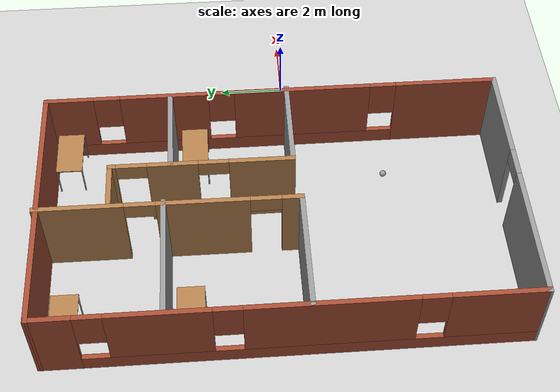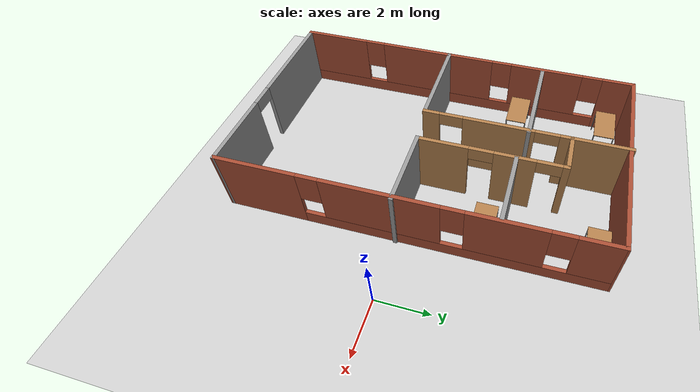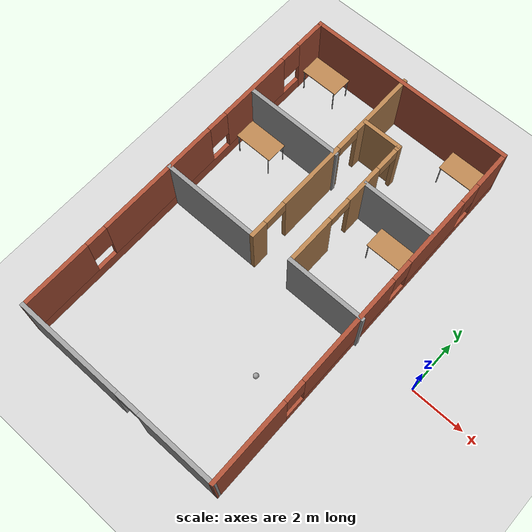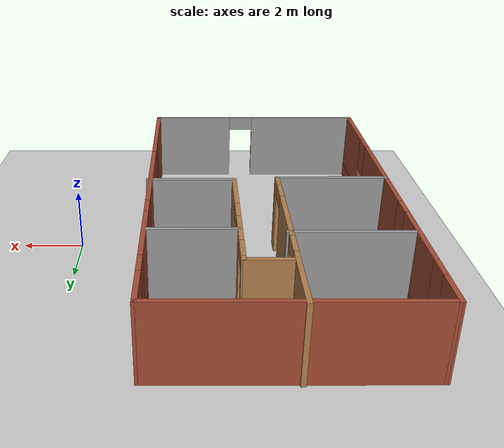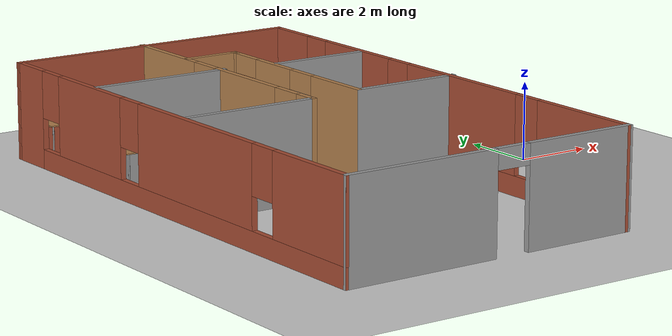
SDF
<sdf version="1.6">
 <world name="default">
  <plugin name="welcome" filename="libwelcome.so"/>
  <light name="sun" type="directional">
   <pose>0 0 10 0 -0 0</pose>
   <diffuse>0.8 0.8 0.8 1</diffuse>
   <specular>0.2 0.2 0.2 1</specular>
   <attenuation>
    <range>1000</range>
    <constant>0.9</constant>
    <linear>0.01</linear>
    <quadratic>0.001</quadratic>
   </attenuation>
   <direction>-0.5 0.1 -0.9</direction>
   <spot><inner_angle>0</inner_angle><outer_angle>0</outer_angle><falloff>0</falloff></spot>
  </light>
  <model name="ground_plane">
   <static>1</static>
   <link name="link">
    <collision name="collision">
     <geometry><plane><normal>0 0 1</normal><size>100 100</size></plane></geometry>
     <surface>
      <contact><collide_bitmask>65535</collide_bitmask></contact>
      <friction><ode><mu>100</mu><mu2>50</mu2></ode></friction>
     </surface>
    </collision>
    <visual name="visual">
     <cast_shadows>0</cast_shadows>
     <geometry><plane><normal>0 0 1</normal><size>100 100</size></plane></geometry>
     <material>
      <script><uri>file://media/materials/scripts/gazebo.material</uri><name>Gazebo/Grey</name></script>
     </material>
    </visual>
   </link>
  </model>
  <gravity>0 0 -9.8</gravity>
  <magnetic_field>6e-06 2.3e-05 -4.2e-05</magnetic_field>
  <atmosphere type="adiabatic"/>
  <physics name="default_physics" default="0" type="ode">
   <max_step_size>0.001</max_step_size>
   <real_time_factor>1</real_time_factor>
   <real_time_update_rate>1000</real_time_update_rate>
  </physics>
  <scene><ambient>0.4 0.4 0.4 1</ambient><background>0.7 0.7 0.7 1</background><shadows>1</shadows></scene>
  <audio><device>default</device></audio>
  <spherical_coordinates>
   <surface_model>EARTH_WGS84</surface_model>
   <latitude_deg>0</latitude_deg>
   <longitude_deg>0</longitude_deg>
   <elevation>0</elevation>
   <heading_deg>0</heading_deg>
  </spherical_coordinates>
  <model name="building">
   <pose>-5.1871 0.46482 0 0 -0 0</pose>
   <link name="Wall_13">
    <pose>-0.016504 2.18571 0 0 -0 -1.5708</pose>
    <visual name="Wall_13_Visual_0">
     <pose>-2.62644 0 1.25 0 -0 0</pose>
     <geometry><box><size>0.247129 0.15 2.5</size></box></geometry>
     <material>
      <script><uri>file://media/materials/scripts/gazebo.material</uri><name>Gazebo/Wood</name></script>
      <ambient>1 1 1 1</ambient>
     </material>
     <meta><layer>0</layer></meta>
    </visual>
    <collision name="Wall_13_Collision_0">
     <geometry><box><size>0.247129 0.15 2.5</size></box></geometry>
     <pose>-2.62644 0 1.25 0 -0 0</pose>
    </collision>
    <visual name="Wall_13_Visual_1">
     <pose>-0.854794 0 1.25 0 -0 0</pose>
     <geometry><box><size>1.49615 0.15 2.5</size></box></geometry>
     <material>
      <script><uri>file://media/materials/scripts/gazebo.material</uri><name>Gazebo/Wood</name></script>
      <ambient>1 1 1 1</ambient>
     </material>
     <meta><layer>0</layer></meta>
    </visual>
    <collision name="Wall_13_Collision_1">
     <geometry><box><size>1.49615 0.15 2.5</size></box></geometry>
     <pose>-0.854794 0 1.25 0 -0 0</pose>
    </collision>
    <visual name="Wall_13_Visual_2">
     <pose>1.77164 0 1.25 0 -0 0</pose>
     <geometry><box><size>1.95672 0.15 2.5</size></box></geometry>
     <material>
      <script><uri>file://media/materials/scripts/gazebo.material</uri><name>Gazebo/Wood</name></script>
      <ambient>1 1 1 1</ambient>
     </material>
     <meta><layer>0</layer></meta>
    </visual>
    <collision name="Wall_13_Collision_2">
     <geometry><box><size>1.95672 0.15 2.5</size></box></geometry>
     <pose>1.77164 0 1.25 0 -0 0</pose>
    </collision>
    <visual name="Wall_13_Visual_3">
     <pose>-2.05287 0 2.25 0 -0 0</pose>
     <geometry><box><size>0.9 0.15 0.5</size></box></geometry>
     <material>
      <script><uri>file://media/materials/scripts/gazebo.material</uri><name>Gazebo/Wood</name></script>
      <ambient>1 1 1 1</ambient>
     </material>
     <meta><layer>0</layer></meta>
    </visual>
    <collision name="Wall_13_Collision_3">
     <geometry><box><size>0.9 0.15 0.5</size></box></geometry>
     <pose>-2.05287 0 2.25 0 -0 0</pose>
    </collision>
    <visual name="Wall_13_Visual_4">
     <pose>0.343283 0 2.25 0 -0 0</pose>
     <geometry><box><size>0.9 0.15 0.5</size></box></geometry>
     <material>
      <script><uri>file://media/materials/scripts/gazebo.material</uri><name>Gazebo/Wood</name></script>
      <ambient>1 1 1 1</ambient>
     </material>
     <meta><layer>0</layer></meta>
    </visual>
    <collision name="Wall_13_Collision_4">
     <geometry><box><size>0.9 0.15 0.5</size></box></geometry>
     <pose>0.343283 0 2.25 0 -0 0</pose>
    </collision>
   </link>
   <link name="Wall_23">
    <pose>-1.45993 3.16211 0 0 -0 1.57081</pose>
    <visual name="Wall_23_Visual_0">
     <pose>-3.55062 0 1.25 0 -0 0</pose>
     <geometry><box><size>0.648755 0.15 2.5</size></box></geometry>
     <material>
      <script><uri>file://media/materials/scripts/gazebo.material</uri><name>Gazebo/Wood</name></script>
      <ambient>1 1 1 1</ambient>
     </material>
     <meta><layer>0</layer></meta>
    </visual>
    <collision name="Wall_23_Collision_0">
     <geometry><box><size>0.648755 0.15 2.5</size></box></geometry>
     <pose>-3.55062 0 1.25 0 -0 0</pose>
    </collision>
    <visual name="Wall_23_Visual_1">
     <pose>-0.983655 0 1.25 0 -0 0</pose>
     <geometry><box><size>2.68518 0.15 2.5</size></box></geometry>
     <material>
      <script><uri>file://media/materials/scripts/gazebo.material</uri><name>Gazebo/Wood</name></script>
      <ambient>1 1 1 1</ambient>
     </material>
     <meta><layer>0</layer></meta>
    </visual>
    <collision name="Wall_23_Collision_1">
     <geometry><box><size>2.68518 0.15 2.5</size></box></geometry>
     <pose>-0.983655 0 1.25 0 -0 0</pose>
    </collision>
    <visual name="Wall_23_Visual_2">
     <pose>2.56697 0 1.25 0 -0 0</pose>
     <geometry><box><size>2.61607 0.15 2.5</size></box></geometry>
     <material>
      <script><uri>file://media/materials/scripts/gazebo.material</uri><name>Gazebo/Wood</name></script>
      <ambient>1 1 1 1</ambient>
     </material>
     <meta><layer>0</layer></meta>
    </visual>
    <collision name="Wall_23_Collision_2">
     <geometry><box><size>2.61607 0.15 2.5</size></box></geometry>
     <pose>2.56697 0 1.25 0 -0 0</pose>
    </collision>
    <visual name="Wall_23_Visual_3">
     <pose>-2.77624 0 2.25 0 -0 0</pose>
     <geometry><box><size>0.9 0.15 0.5</size></box></geometry>
     <material>
      <script><uri>file://media/materials/scripts/gazebo.material</uri><name>Gazebo/Wood</name></script>
      <ambient>1 1 1 1</ambient>
     </material>
     <meta><layer>0</layer></meta>
    </visual>
    <collision name="Wall_23_Collision_3">
     <geometry><box><size>0.9 0.15 0.5</size></box></geometry>
     <pose>-2.77624 0 2.25 0 -0 0</pose>
    </collision>
    <visual name="Wall_23_Visual_4">
     <pose>0.808934 0 2.25 0 -0 0</pose>
     <geometry><box><size>0.9 0.15 0.5</size></box></geometry>
     <material>
      <script><uri>file://media/materials/scripts/gazebo.material</uri><name>Gazebo/Wood</name></script>
      <ambient>1 1 1 1</ambient>
     </material>
     <meta><layer>0</layer></meta>
    </visual>
    <collision name="Wall_23_Collision_4">
     <geometry><box><size>0.9 0.15 0.5</size></box></geometry>
     <pose>0.808934 0 2.25 0 -0 0</pose>
    </collision>
   </link>
   <link name="Wall_29">
    <collision name="Wall_29_Collision">
     <geometry><box><size>1.5 0.15 2.5</size></box></geometry>
     <pose>0 0 1.25 0 -0 0</pose>
    </collision>
    <visual name="Wall_29_Visual">
     <pose>0 0 1.25 0 -0 0</pose>
     <geometry><box><size>1.5 0.15 2.5</size></box></geometry>
     <material>
      <script><uri>file://media/materials/scripts/gazebo.material</uri><name>Gazebo/Wood</name></script>
      <ambient>1 1 1 1</ambient>
     </material>
     <meta><layer>0</layer></meta>
    </visual>
    <pose>-0.737172 4.86303 0 0 -0 0</pose>
   </link>
   <link name="Wall_31">
    <collision name="Wall_31_Collision">
     <geometry><box><size>3.75 0.15 2.5</size></box></geometry>
     <pose>0 0 1.25 0 -0 0</pose>
    </collision>
    <visual name="Wall_31_Visual">
     <pose>0 0 1.25 0 -0 0</pose>
     <geometry><box><size>3.75 0.15 2.5</size></box></geometry>
     <material>
      <script><uri>file://media/materials/scripts/gazebo.material</uri><name>Gazebo/Grey</name></script>
      <ambient>1 1 1 1</ambient>
     </material>
     <meta><layer>0</layer></meta>
    </visual>
    <pose>-3.2599 -0.637819 0 0 -0 3.14159</pose>
   </link>
   <link name="Wall_33">
    <collision name="Wall_33_Collision">
     <geometry><box><size>3 0.15 2.5</size></box></geometry>
     <pose>0 0 1.25 0 -0 0</pose>
    </collision>
    <visual name="Wall_33_Visual">
     <pose>0 0 1.25 0 -0 0</pose>
     <geometry><box><size>3 0.15 2.5</size></box></geometry>
     <material>
      <script><uri>file://media/materials/scripts/gazebo.material</uri><name>Gazebo/Grey</name></script>
      <ambient>1 1 1 1</ambient>
     </material>
     <meta><layer>0</layer></meta>
    </visual>
    <pose>1.4085 -0.489295 0 0 -0 0</pose>
   </link>
   <link name="Wall_35">
    <collision name="Wall_35_Collision">
     <geometry><box><size>3.75 0.15 2.5</size></box></geometry>
     <pose>0 0 1.25 0 -0 0</pose>
    </collision>
    <visual name="Wall_35_Visual">
     <pose>0 0 1.25 0 -0 0</pose>
     <geometry><box><size>3.75 0.15 2.5</size></box></geometry>
     <material>
      <script><uri>file://media/materials/scripts/gazebo.material</uri><name>Gazebo/Grey</name></script>
      <ambient>1 1 1 1</ambient>
     </material>
     <meta><layer>0</layer></meta>
    </visual>
    <pose>-3.1959 3.30118 0 0 -0 3.14159</pose>
   </link>
   <link name="Wall_37">
    <collision name="Wall_37_Collision">
     <geometry><box><size>2.75 0.15 2.5</size></box></geometry>
     <pose>0 0 1.25 0 -0 0</pose>
    </collision>
    <visual name="Wall_37_Visual">
     <pose>0 0 1.25 0 -0 0</pose>
     <geometry><box><size>2.75 0.15 2.5</size></box></geometry>
     <material>
      <script><uri>file://media/materials/scripts/gazebo.material</uri><name>Gazebo/Grey</name></script>
      <ambient>1 1 1 1</ambient>
     </material>
     <meta><layer>0</layer></meta>
    </visual>
    <pose>1.3381 3.09318 0 0 -0 0</pose>
   </link>
   <link name="Wall_39">
    <pose>-1.14037 -6.96182 0 0 -0 0</pose>
    <visual name="Wall_39_Visual_0">
     <pose>-1.95165 0 1.25 0 -0 0</pose>
     <geometry><box><size>4.09671 0.15 2.5</size></box></geometry>
     <material>
      <script><uri>file://media/materials/scripts/gazebo.material</uri><name>Gazebo/Grey</name></script>
      <ambient>1 1 1 1</ambient>
     </material>
     <meta><layer>0</layer></meta>
    </visual>
    <collision name="Wall_39_Collision_0">
     <geometry><box><size>4.09671 0.15 2.5</size></box></geometry>
     <pose>-1.95165 0 1.25 0 -0 0</pose>
    </collision>
    <visual name="Wall_39_Visual_1">
     <pose>2.49836 0 1.25 0 -0 0</pose>
     <geometry><box><size>3.00329 0.15 2.5</size></box></geometry>
     <material>
      <script><uri>file://media/materials/scripts/gazebo.material</uri><name>Gazebo/Grey</name></script>
      <ambient>1 1 1 1</ambient>
     </material>
     <meta><layer>0</layer></meta>
    </visual>
    <collision name="Wall_39_Collision_1">
     <geometry><box><size>3.00329 0.15 2.5</size></box></geometry>
     <pose>2.49836 0 1.25 0 -0 0</pose>
    </collision>
    <visual name="Wall_39_Visual_2">
     <pose>0.54671 0 2.25 0 -0 0</pose>
     <geometry><box><size>0.9 0.15 0.5</size></box></geometry>
     <material>
      <script><uri>file://media/materials/scripts/gazebo.material</uri><name>Gazebo/Grey</name></script>
      <ambient>1 1 1 1</ambient>
     </material>
     <meta><layer>0</layer></meta>
    </visual>
    <collision name="Wall_39_Collision_2">
     <geometry><box><size>0.9 0.15 0.5</size></box></geometry>
     <pose>0.54671 0 2.25 0 -0 0</pose>
    </collision>
   </link>
   <link name="Wall_4">
    <pose>-5.08861 -0.0369 0 0 -0 -1.56744</pose>
    <visual name="Wall_4_Visual_0">
     <pose>-6.36342 0 1.25 0 -0 0</pose>
     <geometry><box><size>1.27316 0.15 2.5</size></box></geometry>
     <material>
      <script><uri>file://media/materials/scripts/gazebo.material</uri><name>Gazebo/Bricks</name></script>
      <ambient>1 1 1 1</ambient>
     </material>
     <meta><layer>0</layer></meta>
    </visual>
    <collision name="Wall_4_Collision_0">
     <geometry><box><size>1.27316 0.15 2.5</size></box></geometry>
     <pose>-6.36342 0 1.25 0 -0 0</pose>
    </collision>
    <visual name="Wall_4_Visual_1">
     <pose>0.636582 0 0.25 0 -0 0</pose>
     <geometry><box><size>12.7268 0.15 0.5</size></box></geometry>
     <material>
      <script><uri>file://media/materials/scripts/gazebo.material</uri><name>Gazebo/Bricks</name></script>
      <ambient>1 1 1 1</ambient>
     </material>
     <meta><layer>0</layer></meta>
    </visual>
    <collision name="Wall_4_Collision_1">
     <geometry><box><size>12.7268 0.15 0.5</size></box></geometry>
     <pose>0.636582 0 0.25 0 -0 0</pose>
    </collision>
    <visual name="Wall_4_Visual_2">
     <pose>-3.48625 0 1.5 0 -0 0</pose>
     <geometry><box><size>2.88117 0.15 2</size></box></geometry>
     <material>
      <script><uri>file://media/materials/scripts/gazebo.material</uri><name>Gazebo/Bricks</name></script>
      <ambient>1 1 1 1</ambient>
     </material>
     <meta><layer>0</layer></meta>
    </visual>
    <collision name="Wall_4_Collision_2">
     <geometry><box><size>2.88117 0.15 2</size></box></geometry>
     <pose>-3.48625 0 1.5 0 -0 0</pose>
    </collision>
    <visual name="Wall_4_Visual_3">
     <pose>1.12491 0 1.5 0 -0 0</pose>
     <geometry><box><size>4.74116 0.15 2</size></box></geometry>
     <material>
      <script><uri>file://media/materials/scripts/gazebo.material</uri><name>Gazebo/Bricks</name></script>
      <ambient>1 1 1 1</ambient>
     </material>
     <meta><layer>0</layer></meta>
    </visual>
    <collision name="Wall_4_Collision_3">
     <geometry><box><size>4.74116 0.15 2</size></box></geometry>
     <pose>1.12491 0 1.5 0 -0 0</pose>
    </collision>
    <visual name="Wall_4_Visual_4">
     <pose>5.64774 0 1.5 0 -0 0</pose>
     <geometry><box><size>2.70451 0.15 2</size></box></geometry>
     <material>
      <script><uri>file://media/materials/scripts/gazebo.material</uri><name>Gazebo/Bricks</name></script>
      <ambient>1 1 1 1</ambient>
     </material>
     <meta><layer>0</layer></meta>
    </visual>
    <collision name="Wall_4_Collision_4">
     <geometry><box><size>2.70451 0.15 2</size></box></geometry>
     <pose>5.64774 0 1.5 0 -0 0</pose>
    </collision>
    <visual name="Wall_4_Visual_5">
     <pose>-5.32684 0 1.9 0 -0 0</pose>
     <geometry><box><size>0.8 0.15 1.2</size></box></geometry>
     <material>
      <script><uri>file://media/materials/scripts/gazebo.material</uri><name>Gazebo/Bricks</name></script>
      <ambient>1 1 1 1</ambient>
     </material>
     <meta><layer>0</layer></meta>
    </visual>
    <collision name="Wall_4_Collision_5">
     <geometry><box><size>0.8 0.15 1.2</size></box></geometry>
     <pose>-5.32684 0 1.9 0 -0 0</pose>
    </collision>
    <visual name="Wall_4_Visual_6">
     <pose>-1.64567 0 1.9 0 -0 0</pose>
     <geometry><box><size>0.8 0.15 1.2</size></box></geometry>
     <material>
      <script><uri>file://media/materials/scripts/gazebo.material</uri><name>Gazebo/Bricks</name></script>
      <ambient>1 1 1 1</ambient>
     </material>
     <meta><layer>0</layer></meta>
    </visual>
    <collision name="Wall_4_Collision_6">
     <geometry><box><size>0.8 0.15 1.2</size></box></geometry>
     <pose>-1.64567 0 1.9 0 -0 0</pose>
    </collision>
    <visual name="Wall_4_Visual_7">
     <pose>3.89549 0 1.9 0 -0 0</pose>
     <geometry><box><size>0.8 0.15 1.2</size></box></geometry>
     <material>
      <script><uri>file://media/materials/scripts/gazebo.material</uri><name>Gazebo/Bricks</name></script>
      <ambient>1 1 1 1</ambient>
     </material>
     <meta><layer>0</layer></meta>
    </visual>
    <collision name="Wall_4_Collision_7">
     <geometry><box><size>0.8 0.15 1.2</size></box></geometry>
     <pose>3.89549 0 1.9 0 -0 0</pose>
    </collision>
   </link>
   <link name="Wall_6">
    <pose>2.76139 -0.0369 0 0 -0 1.57415</pose>
    <visual name="Wall_6_Visual_0">
     <pose>-5.42565 0 1.25 0 -0 0</pose>
     <geometry><box><size>3.14871 0.15 2.5</size></box></geometry>
     <material>
      <script><uri>file://media/materials/scripts/gazebo.material</uri><name>Gazebo/Bricks</name></script>
      <ambient>1 1 1 1</ambient>
     </material>
     <meta><layer>0</layer></meta>
    </visual>
    <collision name="Wall_6_Collision_0">
     <geometry><box><size>3.14871 0.15 2.5</size></box></geometry>
     <pose>-5.42565 0 1.25 0 -0 0</pose>
    </collision>
    <visual name="Wall_6_Visual_1">
     <pose>1.57435 0 0.25 0 -0 0</pose>
     <geometry><box><size>10.8513 0.15 0.5</size></box></geometry>
     <material>
      <script><uri>file://media/materials/scripts/gazebo.material</uri><name>Gazebo/Bricks</name></script>
      <ambient>1 1 1 1</ambient>
     </material>
     <meta><layer>0</layer></meta>
    </visual>
    <collision name="Wall_6_Collision_1">
     <geometry><box><size>10.8513 0.15 0.5</size></box></geometry>
     <pose>1.57435 0 0.25 0 -0 0</pose>
    </collision>
    <visual name="Wall_6_Visual_2">
     <pose>-0.942787 0 1.5 0 -0 0</pose>
     <geometry><box><size>4.21701 0.15 2</size></box></geometry>
     <material>
      <script><uri>file://media/materials/scripts/gazebo.material</uri><name>Gazebo/Bricks</name></script>
      <ambient>1 1 1 1</ambient>
     </material>
     <meta><layer>0</layer></meta>
    </visual>
    <collision name="Wall_6_Collision_2">
     <geometry><box><size>4.21701 0.15 2</size></box></geometry>
     <pose>-0.942787 0 1.5 0 -0 0</pose>
    </collision>
    <visual name="Wall_6_Visual_3">
     <pose>3.3252 0 1.5 0 -0 0</pose>
     <geometry><box><size>2.71898 0.15 2</size></box></geometry>
     <material>
      <script><uri>file://media/materials/scripts/gazebo.material</uri><name>Gazebo/Bricks</name></script>
      <ambient>1 1 1 1</ambient>
     </material>
     <meta><layer>0</layer></meta>
    </visual>
    <collision name="Wall_6_Collision_3">
     <geometry><box><size>2.71898 0.15 2</size></box></geometry>
     <pose>3.3252 0 1.5 0 -0 0</pose>
    </collision>
    <visual name="Wall_6_Visual_4">
     <pose>6.24235 0 1.5 0 -0 0</pose>
     <geometry><box><size>1.51531 0.15 2</size></box></geometry>
     <material>
      <script><uri>file://media/materials/scripts/gazebo.material</uri><name>Gazebo/Bricks</name></script>
      <ambient>1 1 1 1</ambient>
     </material>
     <meta><layer>0</layer></meta>
    </visual>
    <collision name="Wall_6_Collision_4">
     <geometry><box><size>1.51531 0.15 2</size></box></geometry>
     <pose>6.24235 0 1.5 0 -0 0</pose>
    </collision>
    <visual name="Wall_6_Visual_5">
     <pose>-3.45129 0 1.9 0 -0 0</pose>
     <geometry><box><size>0.8 0.15 1.2</size></box></geometry>
     <material>
      <script><uri>file://media/materials/scripts/gazebo.material</uri><name>Gazebo/Bricks</name></script>
      <ambient>1 1 1 1</ambient>
     </material>
     <meta><layer>0</layer></meta>
    </visual>
    <collision name="Wall_6_Collision_5">
     <geometry><box><size>0.8 0.15 1.2</size></box></geometry>
     <pose>-3.45129 0 1.9 0 -0 0</pose>
    </collision>
    <visual name="Wall_6_Visual_6">
     <pose>1.56572 0 1.9 0 -0 0</pose>
     <geometry><box><size>0.8 0.15 1.2</size></box></geometry>
     <material>
      <script><uri>file://media/materials/scripts/gazebo.material</uri><name>Gazebo/Bricks</name></script>
      <ambient>1 1 1 1</ambient>
     </material>
     <meta><layer>0</layer></meta>
    </visual>
    <collision name="Wall_6_Collision_6">
     <geometry><box><size>0.8 0.15 1.2</size></box></geometry>
     <pose>1.56572 0 1.9 0 -0 0</pose>
    </collision>
    <visual name="Wall_6_Visual_7">
     <pose>5.08469 0 1.9 0 -0 0</pose>
     <geometry><box><size>0.8 0.15 1.2</size></box></geometry>
     <material>
      <script><uri>file://media/materials/scripts/gazebo.material</uri><name>Gazebo/Bricks</name></script>
      <ambient>1 1 1 1</ambient>
     </material>
     <meta><layer>0</layer></meta>
    </visual>
    <collision name="Wall_6_Collision_7">
     <geometry><box><size>0.8 0.15 1.2</size></box></geometry>
     <pose>5.08469 0 1.9 0 -0 0</pose>
    </collision>
   </link>
   <link name="Wall_7">
    <collision name="Wall_7_Collision">
     <geometry><box><size>8 0.15 2.5</size></box></geometry>
     <pose>0 0 1.25 0 -0 0</pose>
    </collision>
    <visual name="Wall_7_Visual">
     <pose>0 0 1.25 0 -0 0</pose>
     <geometry><box><size>8 0.15 2.5</size></box></geometry>
     <material>
      <script><uri>file://media/materials/scripts/gazebo.material</uri><name>Gazebo/Bricks</name></script>
      <ambient>1 1 1 1</ambient>
     </material>
     <meta><layer>0</layer></meta>
    </visual>
    <pose>-1.18685 6.88802 0 0 -0 3.14159</pose>
   </link>
   <static>1</static>
  </model>
  <model name="desks">
   <model name="table">
    <static>1</static>
    <link name="link">
     <collision name="surface">
      <pose>0 0 1 0 -0 0</pose>
      <geometry><box><size>1.5 0.8 0.03</size></box></geometry>
      <surface><friction><ode><mu>0.6</mu><mu2>0.6</mu2></ode></friction></surface>
     </collision>
     <visual name="visual1">
      <pose>0 0 1 0 -0 0</pose>
      <geometry><box><size>1.5 0.8 0.03</size></box></geometry>
      <material>
       <script><uri>file://media/materials/scripts/gazebo.material</uri><name>Gazebo/Wood</name></script>
      </material>
     </visual>
     <collision name="front_left_leg">
      <pose>0.68 0.38 0.5 0 -0 0</pose>
      <geometry><cylinder><radius>0.02</radius><length>1</length></cylinder></geometry>
     </collision>
     <visual name="front_left_leg">
      <pose>0.68 0.38 0.5 0 -0 0</pose>
      <geometry><cylinder><radius>0.02</radius><length>1</length></cylinder></geometry>
      <material>
       <script><uri>file://media/materials/scripts/gazebo.material</uri><name>Gazebo/Grey</name></script>
      </material>
     </visual>
     <collision name="front_right_leg">
      <pose>0.68 -0.38 0.5 0 -0 0</pose>
      <geometry><cylinder><radius>0.02</radius><length>1</length></cylinder></geometry>
     </collision>
     <visual name="front_right_leg">
      <pose>0.68 -0.38 0.5 0 -0 0</pose>
      <geometry><cylinder><radius>0.02</radius><length>1</length></cylinder></geometry>
      <material>
       <script><uri>file://media/materials/scripts/gazebo.material</uri><name>Gazebo/Grey</name></script>
      </material>
     </visual>
     <collision name="back_right_leg">
      <pose>-0.68 -0.38 0.5 0 -0 0</pose>
      <geometry><cylinder><radius>0.02</radius><length>1</length></cylinder></geometry>
     </collision>
     <visual name="back_right_leg">
      <pose>-0.68 -0.38 0.5 0 -0 0</pose>
      <geometry><cylinder><radius>0.02</radius><length>1</length></cylinder></geometry>
      <material>
       <script><uri>file://media/materials/scripts/gazebo.material</uri><name>Gazebo/Grey</name></script>
      </material>
     </visual>
     <collision name="back_left_leg">
      <pose>-0.68 0.38 0.5 0 -0 0</pose>
      <geometry><cylinder><radius>0.02</radius><length>1</length></cylinder></geometry>
     </collision>
     <visual name="back_left_leg">
      <pose>-0.68 0.38 0.5 0 -0 0</pose>
      <geometry><cylinder><radius>0.02</radius><length>1</length></cylinder></geometry>
      <material>
       <script><uri>file://media/materials/scripts/gazebo.material</uri><name>Gazebo/Grey</name></script>
      </material>
     </visual>
    </link>
    <pose>-2.9826 -1.75092 0 0 -0 0</pose>
   </model>
   <model name="table_clone">
    <static>1</static>
    <link name="link">
     <collision name="surface">
      <pose>0 0 1 0 -0 0</pose>
      <geometry><box><size>1.5 0.8 0.03</size></box></geometry>
      <surface><friction><ode><mu>0.6</mu><mu2>0.6</mu2></ode></friction></surface>
     </collision>
     <visual name="visual1">
      <pose>0 0 1 0 -0 0</pose>
      <geometry><box><size>1.5 0.8 0.03</size></box></geometry>
      <material>
       <script><uri>file://media/materials/scripts/gazebo.material</uri><name>Gazebo/Wood</name></script>
      </material>
     </visual>
     <collision name="front_left_leg">
      <pose>0.68 0.38 0.5 0 -0 0</pose>
      <geometry><cylinder><radius>0.02</radius><length>1</length></cylinder></geometry>
     </collision>
     <visual name="front_left_leg">
      <pose>0.68 0.38 0.5 0 -0 0</pose>
      <geometry><cylinder><radius>0.02</radius><length>1</length></cylinder></geometry>
      <material>
       <script><uri>file://media/materials/scripts/gazebo.material</uri><name>Gazebo/Grey</name></script>
      </material>
     </visual>
     <collision name="front_right_leg">
      <pose>0.68 -0.38 0.5 0 -0 0</pose>
      <geometry><cylinder><radius>0.02</radius><length>1</length></cylinder></geometry>
     </collision>
     <visual name="front_right_leg">
      <pose>0.68 -0.38 0.5 0 -0 0</pose>
      <geometry><cylinder><radius>0.02</radius><length>1</length></cylinder></geometry>
      <material>
       <script><uri>file://media/materials/scripts/gazebo.material</uri><name>Gazebo/Grey</name></script>
      </material>
     </visual>
     <collision name="back_right_leg">
      <pose>-0.68 -0.38 0.5 0 -0 0</pose>
      <geometry><cylinder><radius>0.02</radius><length>1</length></cylinder></geometry>
     </collision>
     <visual name="back_right_leg">
      <pose>-0.68 -0.38 0.5 0 -0 0</pose>
      <geometry><cylinder><radius>0.02</radius><length>1</length></cylinder></geometry>
      <material>
       <script><uri>file://media/materials/scripts/gazebo.material</uri><name>Gazebo/Grey</name></script>
      </material>
     </visual>
     <collision name="back_left_leg">
      <pose>-0.68 0.38 0.5 0 -0 0</pose>
      <geometry><cylinder><radius>0.02</radius><length>1</length></cylinder></geometry>
     </collision>
     <visual name="back_left_leg">
      <pose>-0.68 0.38 0.5 0 -0 0</pose>
      <geometry><cylinder><radius>0.02</radius><length>1</length></cylinder></geometry>
      <material>
       <script><uri>file://media/materials/scripts/gazebo.material</uri><name>Gazebo/Grey</name></script>
      </material>
     </visual>
    </link>
    <pose>-3.02724 1.78617 -0 0 -0 0</pose>
   </model>
   <model name="table_clone_0">
    <static>1</static>
    <link name="link">
     <collision name="surface">
      <pose>0 0 1 0 -0 0</pose>
      <geometry><box><size>1.5 0.8 0.03</size></box></geometry>
      <surface><friction><ode><mu>0.6</mu><mu2>0.6</mu2></ode></friction></surface>
     </collision>
     <visual name="visual1">
      <pose>0 0 1 0 -0 0</pose>
      <geometry><box><size>1.5 0.8 0.03</size></box></geometry>
      <material>
       <script><uri>file://media/materials/scripts/gazebo.material</uri><name>Gazebo/Wood</name></script>
      </material>
     </visual>
     <collision name="front_left_leg">
      <pose>0.68 0.38 0.5 0 -0 0</pose>
      <geometry><cylinder><radius>0.02</radius><length>1</length></cylinder></geometry>
     </collision>
     <visual name="front_left_leg">
      <pose>0.68 0.38 0.5 0 -0 0</pose>
      <geometry><cylinder><radius>0.02</radius><length>1</length></cylinder></geometry>
      <material>
       <script><uri>file://media/materials/scripts/gazebo.material</uri><name>Gazebo/Grey</name></script>
      </material>
     </visual>
     <collision name="front_right_leg">
      <pose>0.68 -0.38 0.5 0 -0 0</pose>
      <geometry><cylinder><radius>0.02</radius><length>1</length></cylinder></geometry>
     </collision>
     <visual name="front_right_leg">
      <pose>0.68 -0.38 0.5 0 -0 0</pose>
      <geometry><cylinder><radius>0.02</radius><length>1</length></cylinder></geometry>
      <material>
       <script><uri>file://media/materials/scripts/gazebo.material</uri><name>Gazebo/Grey</name></script>
      </material>
     </visual>
     <collision name="back_right_leg">
      <pose>-0.68 -0.38 0.5 0 -0 0</pose>
      <geometry><cylinder><radius>0.02</radius><length>1</length></cylinder></geometry>
     </collision>
     <visual name="back_right_leg">
      <pose>-0.68 -0.38 0.5 0 -0 0</pose>
      <geometry><cylinder><radius>0.02</radius><length>1</length></cylinder></geometry>
      <material>
       <script><uri>file://media/materials/scripts/gazebo.material</uri><name>Gazebo/Grey</name></script>
      </material>
     </visual>
     <collision name="back_left_leg">
      <pose>-0.68 0.38 0.5 0 -0 0</pose>
      <geometry><cylinder><radius>0.02</radius><length>1</length></cylinder></geometry>
     </collision>
     <visual name="back_left_leg">
      <pose>-0.68 0.38 0.5 0 -0 0</pose>
      <geometry><cylinder><radius>0.02</radius><length>1</length></cylinder></geometry>
      <material>
       <script><uri>file://media/materials/scripts/gazebo.material</uri><name>Gazebo/Grey</name></script>
      </material>
     </visual>
    </link>
    <pose>3.01319 1.92417 -0 0 -0 0</pose>
   </model>
   <model name="table_clone_1">
    <static>1</static>
    <link name="link">
     <collision name="surface">
      <pose>0 0 1 0 -0 0</pose>
      <geometry><box><size>1.5 0.8 0.03</size></box></geometry>
      <surface><friction><ode><mu>0.6</mu><mu2>0.6</mu2></ode></friction></surface>
     </collision>
     <visual name="visual1">
      <pose>0 0 1 0 -0 0</pose>
      <geometry><box><size>1.5 0.8 0.03</size></box></geometry>
      <material>
       <script><uri>file://media/materials/scripts/gazebo.material</uri><name>Gazebo/Wood</name></script>
      </material>
     </visual>
     <collision name="front_left_leg">
      <pose>0.68 0.38 0.5 0 -0 0</pose>
      <geometry><cylinder><radius>0.02</radius><length>1</length></cylinder></geometry>
     </collision>
     <visual name="front_left_leg">
      <pose>0.68 0.38 0.5 0 -0 0</pose>
      <geometry><cylinder><radius>0.02</radius><length>1</length></cylinder></geometry>
      <material>
       <script><uri>file://media/materials/scripts/gazebo.material</uri><name>Gazebo/Grey</name></script>
      </material>
     </visual>
     <collision name="front_right_leg">
      <pose>0.68 -0.38 0.5 0 -0 0</pose>
      <geometry><cylinder><radius>0.02</radius><length>1</length></cylinder></geometry>
     </collision>
     <visual name="front_right_leg">
      <pose>0.68 -0.38 0.5 0 -0 0</pose>
      <geometry><cylinder><radius>0.02</radius><length>1</length></cylinder></geometry>
      <material>
       <script><uri>file://media/materials/scripts/gazebo.material</uri><name>Gazebo/Grey</name></script>
      </material>
     </visual>
     <collision name="back_right_leg">
      <pose>-0.68 -0.38 0.5 0 -0 0</pose>
      <geometry><cylinder><radius>0.02</radius><length>1</length></cylinder></geometry>
     </collision>
     <visual name="back_right_leg">
      <pose>-0.68 -0.38 0.5 0 -0 0</pose>
      <geometry><cylinder><radius>0.02</radius><length>1</length></cylinder></geometry>
      <material>
       <script><uri>file://media/materials/scripts/gazebo.material</uri><name>Gazebo/Grey</name></script>
      </material>
     </visual>
     <collision name="back_left_leg">
      <pose>-0.68 0.38 0.5 0 -0 0</pose>
      <geometry><cylinder><radius>0.02</radius><length>1</length></cylinder></geometry>
     </collision>
     <visual name="back_left_leg">
      <pose>-0.68 0.38 0.5 0 -0 0</pose>
      <geometry><cylinder><radius>0.02</radius><length>1</length></cylinder></geometry>
      <material>
       <script><uri>file://media/materials/scripts/gazebo.material</uri><name>Gazebo/Grey</name></script>
      </material>
     </visual>
    </link>
    <pose>2.99665 -1.95942 -0 0 -0 0</pose>
   </model>
   <static>0</static>
   <pose>-6.31407 4.85578 0.023261 0 -0 0</pose>
  </model>
  <model name="my_ball">
   <link name="link">
    <inertial>
     <mass>1</mass>
     <inertia><ixx>0.1</ixx><ixy>0</ixy><ixz>0</ixz><iyy>0.1</iyy><iyz>0</iyz><izz>0.1</izz></inertia>
    </inertial>
    <visual name="visual">
     <geometry><sphere><radius>0.1</radius></sphere></geometry>
     <material>
      <script><name>Gazebo/Grey</name><uri>file://media/materials/scripts/gazebo.material</uri></script>
      <shader type="pixel"><normal_map>__default__</normal_map></shader>
      <ambient>1 1 1 1</ambient>
      <diffuse>1 1 1 1</diffuse>
      <specular>1 1 1 1</specular>
      <emissive>1 1 1 1</emissive>
     </material>
    </visual>
    <collision name="collision">
     <geometry><sphere><radius>0.1</radius></sphere></geometry>
     <surface>
      <friction>
       <ode><mu>1</mu><mu2>1</mu2><fdir1>0 0 0</fdir1><slip1>0</slip1><slip2>0</slip2></ode>
       <torsional>
        <coefficient>1</coefficient>
        <patch_radius>0</patch_radius>
        <surface_radius>0</surface_radius>
        <use_patch_radius>1</use_patch_radius>
        <ode><slip>0</slip></ode>
       </torsional>
      </friction>
      <bounce><restitution_coefficient>0</restitution_coefficient><threshold>1e+06</threshold></bounce>
      <contact>
       <collide_without_contact>0</collide_without_contact>
       <collide_without_contact_bitmask>1</collide_without_contact_bitmask>
       <collide_bitmask>1</collide_bitmask>
       <ode>
        <soft_cfm>0</soft_cfm>
        <soft_erp>0.2</soft_erp>
        <kp>1e+13</kp>
        <kd>1</kd>
        <max_vel>0.01</max_vel>
        <min_depth>0</min_depth>
       </ode>
       <bullet>
        <split_impulse>1</split_impulse>
        <split_impulse_penetration_threshold>-0.01</split_impulse_penetration_threshold>
        <soft_cfm>0</soft_cfm>
        <soft_erp>0.2</soft_erp>
        <kp>1e+13</kp>
        <kd>1</kd>
       </bullet>
      </contact>
     </surface>
    </collision>
   </link>
   <static>0</static>
   <pose>-4 -3 0.1 0 -0 0</pose>
  </model>
 </world>
</sdf>
